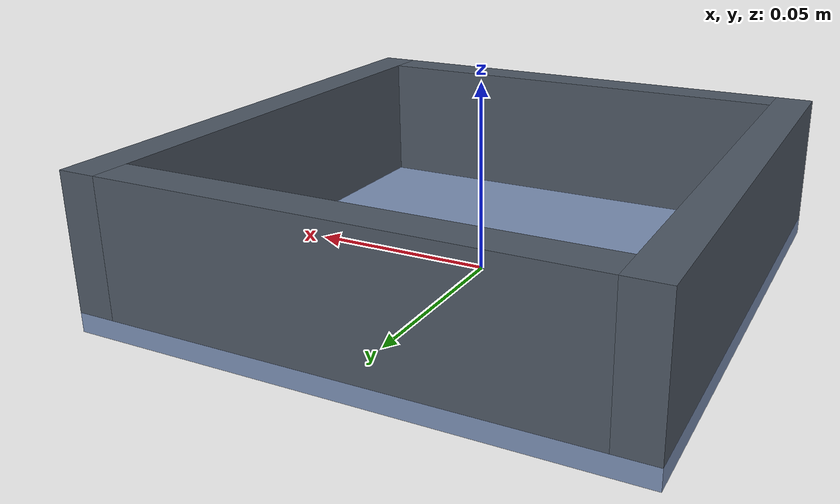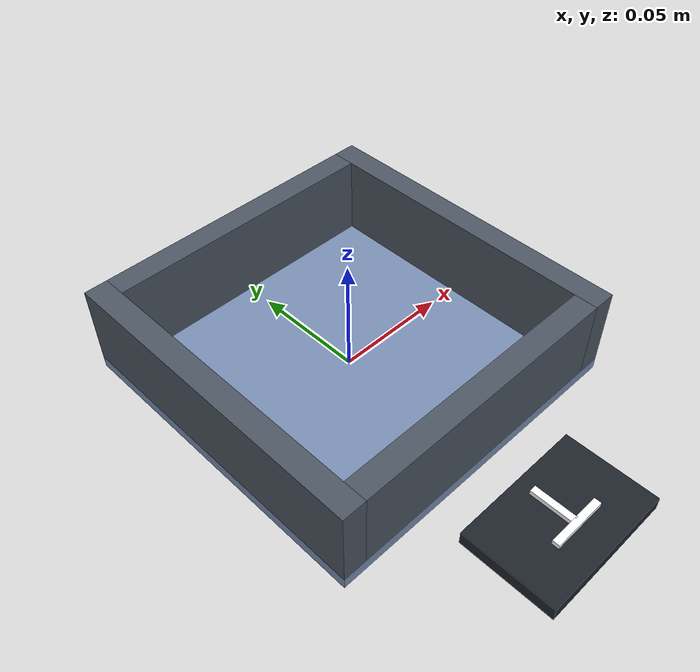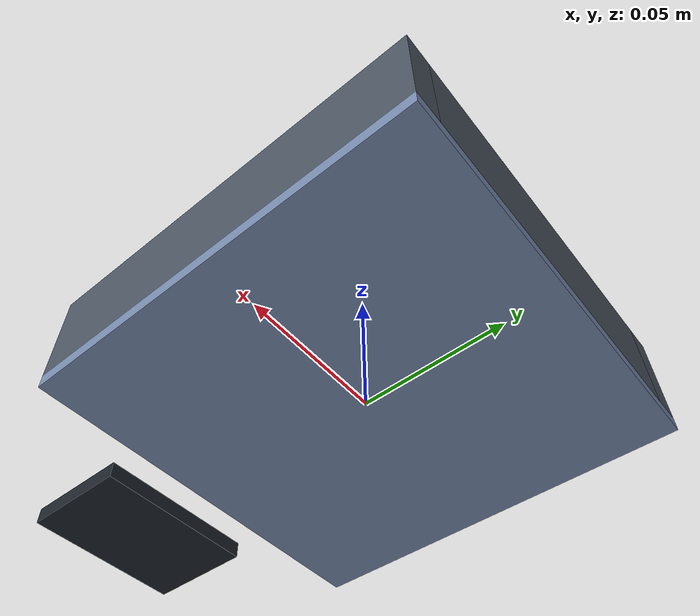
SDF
<?xml version='1.0' encoding='utf-8'?>
<sdf version="1.6">
  <model name="buffer">
    <static>true</static>
    <link name="link">
      <visual name="floor">
        <pose>0.000000 0.000000 0.000000 0 0 0.000000</pose>
        <geometry>
          <box>
            <size>0.140000 0.140000 0.005000</size>
          </box>
        </geometry>
        <material>
          <ambient>0.36 0.42 0.52 1</ambient>
          <diffuse>0.48 0.56 0.70 1</diffuse>
          <emissive>0.054400000000000004 0.055999999999999994 0.0576 1</emissive>
          <specular>0.12 0.12 0.12 1</specular>
        </material>
      </visual>
      <visual name="left_wall">
        <pose>-0.065000 0.000000 0.020000 0 0 0.000000</pose>
        <geometry>
          <box>
            <size>0.010000 0.140000 0.035000</size>
          </box>
        </geometry>
        <material>
          <ambient>0.22499999999999998 0.255 0.2925 1</ambient>
          <diffuse>0.3 0.34 0.39 1</diffuse>
          <emissive>0.024 0.027200000000000002 0.031200000000000002 1</emissive>
          <specular>0.12 0.12 0.12 1</specular>
        </material>
      </visual>
      <visual name="right_wall">
        <pose>0.065000 0.000000 0.020000 0 0 0.000000</pose>
        <geometry>
          <box>
            <size>0.010000 0.140000 0.035000</size>
          </box>
        </geometry>
        <material>
          <ambient>0.22499999999999998 0.255 0.2925 1</ambient>
          <diffuse>0.3 0.34 0.39 1</diffuse>
          <emissive>0.024 0.027200000000000002 0.031200000000000002 1</emissive>
          <specular>0.12 0.12 0.12 1</specular>
        </material>
      </visual>
      <visual name="front_wall">
        <pose>0.000000 -0.065000 0.020000 0 0 0.000000</pose>
        <geometry>
          <box>
            <size>0.120000 0.010000 0.035000</size>
          </box>
        </geometry>
        <material>
          <ambient>0.22499999999999998 0.255 0.2925 1</ambient>
          <diffuse>0.3 0.34 0.39 1</diffuse>
          <emissive>0.024 0.027200000000000002 0.031200000000000002 1</emissive>
          <specular>0.12 0.12 0.12 1</specular>
        </material>
      </visual>
      <visual name="back_wall">
        <pose>0.000000 0.065000 0.020000 0 0 0.000000</pose>
        <geometry>
          <box>
            <size>0.120000 0.010000 0.035000</size>
          </box>
        </geometry>
        <material>
          <ambient>0.22499999999999998 0.255 0.2925 1</ambient>
          <diffuse>0.3 0.34 0.39 1</diffuse>
          <emissive>0.024 0.027200000000000002 0.031200000000000002 1</emissive>
          <specular>0.12 0.12 0.12 1</specular>
        </material>
      </visual>
      <visual name="label_plate">
        <pose>0.000000 -0.105000 0.000000 0 0 0.000000</pose>
        <geometry>
          <box>
            <size>0.060000 0.040000 0.006000</size>
          </box>
        </geometry>
        <material>
          <ambient>0.09 0.10500000000000001 0.1275 1</ambient>
          <diffuse>0.12 0.14 0.17 1</diffuse>
          <emissive>0.0096 0.011200000000000002 0.013600000000000001 1</emissive>
          <specular>0.12 0.12 0.12 1</specular>
        </material>
      </visual>
      <visual name="label_t_top">
        <pose>0 -0.111 0.005 0 0 0</pose>
        <geometry>
          <box>
            <size>0.024 0.003 0.002</size>
          </box>
        </geometry>
        <material>
          <ambient>0.75 0.75 0.75 1</ambient>
          <diffuse>1 1 1 1</diffuse>
          <emissive>0.08 0.08 0.08 1</emissive>
          <specular>0.12 0.12 0.12 1</specular>
        </material>
      </visual>
      <visual name="label_t_stem">
        <pose>0 -0.101 0.005 0 0 0</pose>
        <geometry>
          <box>
            <size>0.003 0.018 0.002</size>
          </box>
        </geometry>
        <material>
          <ambient>0.75 0.75 0.75 1</ambient>
          <diffuse>1 1 1 1</diffuse>
          <emissive>0.08 0.08 0.08 1</emissive>
          <specular>0.12 0.12 0.12 1</specular>
        </material>
      </visual>
    </link>
  </model>
</sdf>
